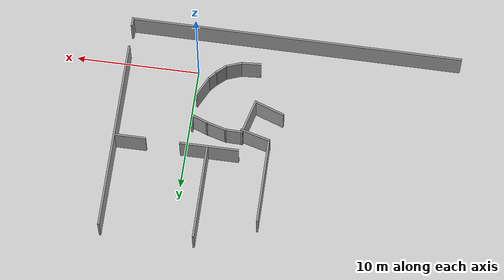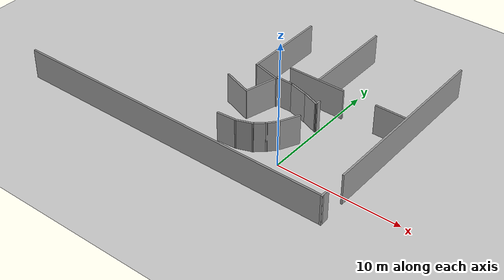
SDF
<sdf version="1.7">
 <world name="default">
  <model name="ground_plane">
   <static>1</static>
   <link name="link">
    <collision name="collision">
     <geometry><plane><normal>0 0 1</normal><size>100 100</size></plane></geometry>
     <surface>
      <contact><collide_bitmask>65535</collide_bitmask></contact>
      <friction><ode><mu>100</mu><mu2>50</mu2></ode></friction>
     </surface>
    </collision>
    <visual name="visual">
     <cast_shadows>0</cast_shadows>
     <geometry><plane><normal>0 0 1</normal><size>100 100</size></plane></geometry>
     <material>
      <script><uri>file://media/materials/scripts/gazebo.material</uri><name>Gazebo/Grey</name></script>
     </material>
    </visual>
   </link>
  </model>
  <model name="museum">
   <link name="Wall_1">
    <pose>12.1586 -6.274 0 0 -0 0.071226</pose>
    <visual name="Wall_1_Visual">
     <pose>0 0 1.25 0 -0 0</pose>
     <geometry><box><size>1.65613 0.15 2.5</size></box></geometry>
     <material>
      <script><uri>file://media/materials/scripts/gazebo.material</uri><name>Gazebo/Grey</name></script>
      <ambient>1 1 1 1</ambient>
      <shader type="pixel"/>
     </material>
     <meta><layer>0</layer></meta>
    </visual>
    <collision name="Wall_1_Collision">
     <pose>0 0 1.25 0 -0 0</pose>
     <geometry><box><size>1.65613 0.15 2.5</size></box></geometry>
     <surface>
      <friction>
       <ode><mu>1</mu><mu2>1</mu2><fdir1>0 0 0</fdir1><slip1>0</slip1><slip2>0</slip2></ode>
       <torsional>
        <coefficient>1</coefficient>
        <patch_radius>0</patch_radius>
        <surface_radius>0</surface_radius>
        <use_patch_radius>1</use_patch_radius>
        <ode><slip>0</slip></ode>
       </torsional>
      </friction>
      <bounce><restitution_coefficient>0</restitution_coefficient><threshold>1e+06</threshold></bounce>
      <contact>
       <collide_without_contact>0</collide_without_contact>
       <collide_without_contact_bitmask>1</collide_without_contact_bitmask>
       <collide_bitmask>1</collide_bitmask>
       <ode>
        <soft_cfm>0</soft_cfm>
        <soft_erp>0.2</soft_erp>
        <kp>1e+13</kp>
        <kd>1</kd>
        <max_vel>0.01</max_vel>
        <min_depth>0</min_depth>
       </ode>
       <bullet>
        <split_impulse>1</split_impulse>
        <split_impulse_penetration_threshold>-0.01</split_impulse_penetration_threshold>
        <soft_cfm>0</soft_cfm>
        <soft_erp>0.2</soft_erp>
        <kp>1e+13</kp>
        <kd>1</kd>
       </bullet>
      </contact>
     </surface>
    </collision>
   </link>
   <link name="Wall_14">
    <pose>10.1587 -2.61733 0 0 0 -0.33835</pose>
    <visual name="Wall_14_Visual">
     <pose>0 0 1.25 0 -0 0</pose>
     <geometry><box><size>2.58802 0.15 2.5</size></box></geometry>
     <material>
      <script><uri>file://media/materials/scripts/gazebo.material</uri><name>Gazebo/Grey</name></script>
      <ambient>1 1 1 1</ambient>
      <shader type="pixel"/>
     </material>
     <meta><layer>0</layer></meta>
    </visual>
    <collision name="Wall_14_Collision">
     <pose>0 0 1.25 0 -0 0</pose>
     <geometry><box><size>2.58802 0.15 2.5</size></box></geometry>
     <surface>
      <friction>
       <ode><mu>1</mu><mu2>1</mu2><fdir1>0 0 0</fdir1><slip1>0</slip1><slip2>0</slip2></ode>
       <torsional>
        <coefficient>1</coefficient>
        <patch_radius>0</patch_radius>
        <surface_radius>0</surface_radius>
        <use_patch_radius>1</use_patch_radius>
        <ode><slip>0</slip></ode>
       </torsional>
      </friction>
      <bounce><restitution_coefficient>0</restitution_coefficient><threshold>1e+06</threshold></bounce>
      <contact>
       <collide_without_contact>0</collide_without_contact>
       <collide_without_contact_bitmask>1</collide_without_contact_bitmask>
       <collide_bitmask>1</collide_bitmask>
       <ode>
        <soft_cfm>0</soft_cfm>
        <soft_erp>0.2</soft_erp>
        <kp>1e+13</kp>
        <kd>1</kd>
        <max_vel>0.01</max_vel>
        <min_depth>0</min_depth>
       </ode>
       <bullet>
        <split_impulse>1</split_impulse>
        <split_impulse_penetration_threshold>-0.01</split_impulse_penetration_threshold>
        <soft_cfm>0</soft_cfm>
        <soft_erp>0.2</soft_erp>
        <kp>1e+13</kp>
        <kd>1</kd>
       </bullet>
      </contact>
     </surface>
    </collision>
   </link>
   <link name="Wall_15">
    <pose>11.6877 -1.62545 0 0 -0 1.309</pose>
    <visual name="Wall_15_Visual">
     <pose>0 0 1.25 0 -0 0</pose>
     <geometry><box><size>3 0.15 2.5</size></box></geometry>
     <material>
      <script><uri>file://media/materials/scripts/gazebo.material</uri><name>Gazebo/Grey</name></script>
      <ambient>1 1 1 1</ambient>
      <shader type="pixel"/>
     </material>
     <meta><layer>0</layer></meta>
    </visual>
    <collision name="Wall_15_Collision">
     <pose>0 0 1.25 0 -0 0</pose>
     <geometry><box><size>3 0.15 2.5</size></box></geometry>
     <surface>
      <friction>
       <ode><mu>1</mu><mu2>1</mu2><fdir1>0 0 0</fdir1><slip1>0</slip1><slip2>0</slip2></ode>
       <torsional>
        <coefficient>1</coefficient>
        <patch_radius>0</patch_radius>
        <surface_radius>0</surface_radius>
        <use_patch_radius>1</use_patch_radius>
        <ode><slip>0</slip></ode>
       </torsional>
      </friction>
      <bounce><restitution_coefficient>0</restitution_coefficient><threshold>1e+06</threshold></bounce>
      <contact>
       <collide_without_contact>0</collide_without_contact>
       <collide_without_contact_bitmask>1</collide_without_contact_bitmask>
       <collide_bitmask>1</collide_bitmask>
       <ode>
        <soft_cfm>0</soft_cfm>
        <soft_erp>0.2</soft_erp>
        <kp>1e+13</kp>
        <kd>1</kd>
        <max_vel>0.01</max_vel>
        <min_depth>0</min_depth>
       </ode>
       <bullet>
        <split_impulse>1</split_impulse>
        <split_impulse_penetration_threshold>-0.01</split_impulse_penetration_threshold>
        <soft_cfm>0</soft_cfm>
        <soft_erp>0.2</soft_erp>
        <kp>1e+13</kp>
        <kd>1</kd>
       </bullet>
      </contact>
     </surface>
    </collision>
   </link>
   <link name="Wall_16">
    <pose>12.7085 -0.282917 0 0 0 -0.020832</pose>
    <visual name="Wall_16_Visual">
     <pose>0 0 1.25 0 -0 0</pose>
     <geometry><box><size>1.4744 0.15 2.5</size></box></geometry>
     <material>
      <script><uri>file://media/materials/scripts/gazebo.material</uri><name>Gazebo/Grey</name></script>
      <ambient>1 1 1 1</ambient>
      <shader type="pixel"/>
     </material>
     <meta><layer>0</layer></meta>
    </visual>
    <collision name="Wall_16_Collision">
     <pose>0 0 1.25 0 -0 0</pose>
     <geometry><box><size>1.4744 0.15 2.5</size></box></geometry>
     <surface>
      <friction>
       <ode><mu>1</mu><mu2>1</mu2><fdir1>0 0 0</fdir1><slip1>0</slip1><slip2>0</slip2></ode>
       <torsional>
        <coefficient>1</coefficient>
        <patch_radius>0</patch_radius>
        <surface_radius>0</surface_radius>
        <use_patch_radius>1</use_patch_radius>
        <ode><slip>0</slip></ode>
       </torsional>
      </friction>
      <bounce><restitution_coefficient>0</restitution_coefficient><threshold>1e+06</threshold></bounce>
      <contact>
       <collide_without_contact>0</collide_without_contact>
       <collide_without_contact_bitmask>1</collide_without_contact_bitmask>
       <collide_bitmask>1</collide_bitmask>
       <ode>
        <soft_cfm>0</soft_cfm>
        <soft_erp>0.2</soft_erp>
        <kp>1e+13</kp>
        <kd>1</kd>
        <max_vel>0.01</max_vel>
        <min_depth>0</min_depth>
       </ode>
       <bullet>
        <split_impulse>1</split_impulse>
        <split_impulse_penetration_threshold>-0.01</split_impulse_penetration_threshold>
        <soft_cfm>0</soft_cfm>
        <soft_erp>0.2</soft_erp>
        <kp>1e+13</kp>
        <kd>1</kd>
       </bullet>
      </contact>
     </surface>
    </collision>
   </link>
   <link name="Wall_17">
    <pose>14.1433 -0.503766 0 0 0 -0.261799</pose>
    <visual name="Wall_17_Visual">
     <pose>0 0 1.25 0 -0 0</pose>
     <geometry><box><size>1.75 0.15 2.5</size></box></geometry>
     <material>
      <script><uri>file://media/materials/scripts/gazebo.material</uri><name>Gazebo/Grey</name></script>
      <ambient>1 1 1 1</ambient>
      <shader type="pixel"/>
     </material>
     <meta><layer>0</layer></meta>
    </visual>
    <collision name="Wall_17_Collision">
     <pose>0 0 1.25 0 -0 0</pose>
     <geometry><box><size>1.75 0.15 2.5</size></box></geometry>
     <surface>
      <friction>
       <ode><mu>1</mu><mu2>1</mu2><fdir1>0 0 0</fdir1><slip1>0</slip1><slip2>0</slip2></ode>
       <torsional>
        <coefficient>1</coefficient>
        <patch_radius>0</patch_radius>
        <surface_radius>0</surface_radius>
        <use_patch_radius>1</use_patch_radius>
        <ode><slip>0</slip></ode>
       </torsional>
      </friction>
      <bounce><restitution_coefficient>0</restitution_coefficient><threshold>1e+06</threshold></bounce>
      <contact>
       <collide_without_contact>0</collide_without_contact>
       <collide_without_contact_bitmask>1</collide_without_contact_bitmask>
       <collide_bitmask>1</collide_bitmask>
       <ode>
        <soft_cfm>0</soft_cfm>
        <soft_erp>0.2</soft_erp>
        <kp>1e+13</kp>
        <kd>1</kd>
        <max_vel>0.01</max_vel>
        <min_depth>0</min_depth>
       </ode>
       <bullet>
        <split_impulse>1</split_impulse>
        <split_impulse_penetration_threshold>-0.01</split_impulse_penetration_threshold>
        <soft_cfm>0</soft_cfm>
        <soft_erp>0.2</soft_erp>
        <kp>1e+13</kp>
        <kd>1</kd>
       </bullet>
      </contact>
     </surface>
    </collision>
   </link>
   <link name="Wall_18">
    <pose>15.5429 -0.945865 0 0 0 -0.358731</pose>
    <visual name="Wall_18_Visual">
     <pose>0 0 1.25 0 -0 0</pose>
     <geometry><box><size>1.48895 0.15 2.5</size></box></geometry>
     <material>
      <script><uri>file://media/materials/scripts/gazebo.material</uri><name>Gazebo/Grey</name></script>
      <ambient>1 1 1 1</ambient>
      <shader type="pixel"/>
     </material>
     <meta><layer>0</layer></meta>
    </visual>
    <collision name="Wall_18_Collision">
     <pose>0 0 1.25 0 -0 0</pose>
     <geometry><box><size>1.48895 0.15 2.5</size></box></geometry>
     <surface>
      <friction>
       <ode><mu>1</mu><mu2>1</mu2><fdir1>0 0 0</fdir1><slip1>0</slip1><slip2>0</slip2></ode>
       <torsional>
        <coefficient>1</coefficient>
        <patch_radius>0</patch_radius>
        <surface_radius>0</surface_radius>
        <use_patch_radius>1</use_patch_radius>
        <ode><slip>0</slip></ode>
       </torsional>
      </friction>
      <bounce><restitution_coefficient>0</restitution_coefficient><threshold>1e+06</threshold></bounce>
      <contact>
       <collide_without_contact>0</collide_without_contact>
       <collide_without_contact_bitmask>1</collide_without_contact_bitmask>
       <collide_bitmask>1</collide_bitmask>
       <ode>
        <soft_cfm>0</soft_cfm>
        <soft_erp>0.2</soft_erp>
        <kp>1e+13</kp>
        <kd>1</kd>
        <max_vel>0.01</max_vel>
        <min_depth>0</min_depth>
       </ode>
       <bullet>
        <split_impulse>1</split_impulse>
        <split_impulse_penetration_threshold>-0.01</split_impulse_penetration_threshold>
        <soft_cfm>0</soft_cfm>
        <soft_erp>0.2</soft_erp>
        <kp>1e+13</kp>
        <kd>1</kd>
       </bullet>
      </contact>
     </surface>
    </collision>
   </link>
   <link name="Wall_19">
    <pose>16.1697 -1.00591 0 0 -0 1.5708</pose>
    <visual name="Wall_19_Visual">
     <pose>0 0 1.25 0 -0 0</pose>
     <geometry><box><size>0.5 0.15 2.5</size></box></geometry>
     <material>
      <script><uri>file://media/materials/scripts/gazebo.material</uri><name>Gazebo/Grey</name></script>
      <ambient>1 1 1 1</ambient>
      <shader type="pixel"/>
     </material>
     <meta><layer>0</layer></meta>
    </visual>
    <collision name="Wall_19_Collision">
     <pose>0 0 1.25 0 -0 0</pose>
     <geometry><box><size>0.5 0.15 2.5</size></box></geometry>
     <surface>
      <friction>
       <ode><mu>1</mu><mu2>1</mu2><fdir1>0 0 0</fdir1><slip1>0</slip1><slip2>0</slip2></ode>
       <torsional>
        <coefficient>1</coefficient>
        <patch_radius>0</patch_radius>
        <surface_radius>0</surface_radius>
        <use_patch_radius>1</use_patch_radius>
        <ode><slip>0</slip></ode>
       </torsional>
      </friction>
      <bounce><restitution_coefficient>0</restitution_coefficient><threshold>1e+06</threshold></bounce>
      <contact>
       <collide_without_contact>0</collide_without_contact>
       <collide_without_contact_bitmask>1</collide_without_contact_bitmask>
       <collide_bitmask>1</collide_bitmask>
       <ode>
        <soft_cfm>0</soft_cfm>
        <soft_erp>0.2</soft_erp>
        <kp>1e+13</kp>
        <kd>1</kd>
        <max_vel>0.01</max_vel>
        <min_depth>0</min_depth>
       </ode>
       <bullet>
        <split_impulse>1</split_impulse>
        <split_impulse_penetration_threshold>-0.01</split_impulse_penetration_threshold>
        <soft_cfm>0</soft_cfm>
        <soft_erp>0.2</soft_erp>
        <kp>1e+13</kp>
        <kd>1</kd>
       </bullet>
      </contact>
     </surface>
    </collision>
   </link>
   <link name="Wall_2">
    <pose>13.4937 -6.00412 0 0 -0 0.354727</pose>
    <visual name="Wall_2_Visual">
     <pose>0 0 1.25 0 -0 0</pose>
     <geometry><box><size>1.39543 0.15 2.5</size></box></geometry>
     <material>
      <script><uri>file://media/materials/scripts/gazebo.material</uri><name>Gazebo/Grey</name></script>
      <ambient>1 1 1 1</ambient>
      <shader type="pixel"/>
     </material>
     <meta><layer>0</layer></meta>
    </visual>
    <collision name="Wall_2_Collision">
     <pose>0 0 1.25 0 -0 0</pose>
     <geometry><box><size>1.39543 0.15 2.5</size></box></geometry>
     <surface>
      <friction>
       <ode><mu>1</mu><mu2>1</mu2><fdir1>0 0 0</fdir1><slip1>0</slip1><slip2>0</slip2></ode>
       <torsional>
        <coefficient>1</coefficient>
        <patch_radius>0</patch_radius>
        <surface_radius>0</surface_radius>
        <use_patch_radius>1</use_patch_radius>
        <ode><slip>0</slip></ode>
       </torsional>
      </friction>
      <bounce><restitution_coefficient>0</restitution_coefficient><threshold>1e+06</threshold></bounce>
      <contact>
       <collide_without_contact>0</collide_without_contact>
       <collide_without_contact_bitmask>1</collide_without_contact_bitmask>
       <collide_bitmask>1</collide_bitmask>
       <ode>
        <soft_cfm>0</soft_cfm>
        <soft_erp>0.2</soft_erp>
        <kp>1e+13</kp>
        <kd>1</kd>
        <max_vel>0.01</max_vel>
        <min_depth>0</min_depth>
       </ode>
       <bullet>
        <split_impulse>1</split_impulse>
        <split_impulse_penetration_threshold>-0.01</split_impulse_penetration_threshold>
        <soft_cfm>0</soft_cfm>
        <soft_erp>0.2</soft_erp>
        <kp>1e+13</kp>
        <kd>1</kd>
       </bullet>
      </contact>
     </surface>
    </collision>
   </link>
   <link name="Wall_21">
    <pose>14.4565 1.31728 0 0 -0 0</pose>
    <visual name="Wall_21_Visual">
     <pose>0 0 1.25 0 -0 0</pose>
     <geometry><box><size>4.75 0.15 2.5</size></box></geometry>
     <material>
      <script><uri>file://media/materials/scripts/gazebo.material</uri><name>Gazebo/Grey</name></script>
      <ambient>1 1 1 1</ambient>
      <shader type="pixel"/>
     </material>
     <meta><layer>0</layer></meta>
    </visual>
    <collision name="Wall_21_Collision">
     <pose>0 0 1.25 0 -0 0</pose>
     <geometry><box><size>4.75 0.15 2.5</size></box></geometry>
     <surface>
      <friction>
       <ode><mu>1</mu><mu2>1</mu2><fdir1>0 0 0</fdir1><slip1>0</slip1><slip2>0</slip2></ode>
       <torsional>
        <coefficient>1</coefficient>
        <patch_radius>0</patch_radius>
        <surface_radius>0</surface_radius>
        <use_patch_radius>1</use_patch_radius>
        <ode><slip>0</slip></ode>
       </torsional>
      </friction>
      <bounce><restitution_coefficient>0</restitution_coefficient><threshold>1e+06</threshold></bounce>
      <contact>
       <collide_without_contact>0</collide_without_contact>
       <collide_without_contact_bitmask>1</collide_without_contact_bitmask>
       <collide_bitmask>1</collide_bitmask>
       <ode>
        <soft_cfm>0</soft_cfm>
        <soft_erp>0.2</soft_erp>
        <kp>1e+13</kp>
        <kd>1</kd>
        <max_vel>0.01</max_vel>
        <min_depth>0</min_depth>
       </ode>
       <bullet>
        <split_impulse>1</split_impulse>
        <split_impulse_penetration_threshold>-0.01</split_impulse_penetration_threshold>
        <soft_cfm>0</soft_cfm>
        <soft_erp>0.2</soft_erp>
        <kp>1e+13</kp>
        <kd>1</kd>
       </bullet>
      </contact>
     </surface>
    </collision>
   </link>
   <link name="Wall_23">
    <pose>20.8037 1.29717 0 0 -0 0</pose>
    <visual name="Wall_23_Visual">
     <pose>0 0 1.25 0 -0 0</pose>
     <geometry><box><size>2.5 0.15 2.5</size></box></geometry>
     <material>
      <script><uri>file://media/materials/scripts/gazebo.material</uri><name>Gazebo/Grey</name></script>
      <ambient>1 1 1 1</ambient>
      <shader type="pixel"/>
     </material>
     <meta><layer>0</layer></meta>
    </visual>
    <collision name="Wall_23_Collision">
     <pose>0 0 1.25 0 -0 0</pose>
     <geometry><box><size>2.5 0.15 2.5</size></box></geometry>
     <surface>
      <friction>
       <ode><mu>1</mu><mu2>1</mu2><fdir1>0 0 0</fdir1><slip1>0</slip1><slip2>0</slip2></ode>
       <torsional>
        <coefficient>1</coefficient>
        <patch_radius>0</patch_radius>
        <surface_radius>0</surface_radius>
        <use_patch_radius>1</use_patch_radius>
        <ode><slip>0</slip></ode>
       </torsional>
      </friction>
      <bounce><restitution_coefficient>0</restitution_coefficient><threshold>1e+06</threshold></bounce>
      <contact>
       <collide_without_contact>0</collide_without_contact>
       <collide_without_contact_bitmask>1</collide_without_contact_bitmask>
       <collide_bitmask>1</collide_bitmask>
       <ode>
        <soft_cfm>0</soft_cfm>
        <soft_erp>0.2</soft_erp>
        <kp>1e+13</kp>
        <kd>1</kd>
        <max_vel>0.01</max_vel>
        <min_depth>0</min_depth>
       </ode>
       <bullet>
        <split_impulse>1</split_impulse>
        <split_impulse_penetration_threshold>-0.01</split_impulse_penetration_threshold>
        <soft_cfm>0</soft_cfm>
        <soft_erp>0.2</soft_erp>
        <kp>1e+13</kp>
        <kd>1</kd>
       </bullet>
      </contact>
     </surface>
    </collision>
   </link>
   <link name="Wall_25">
    <pose>9.82211 3.56475 0 0 0 -1.5708</pose>
    <visual name="Wall_25_Visual">
     <pose>0 0 1.25 0 -0 0</pose>
     <geometry><box><size>7 0.15 2.5</size></box></geometry>
     <material>
      <script><uri>file://media/materials/scripts/gazebo.material</uri><name>Gazebo/Grey</name></script>
      <ambient>1 1 1 1</ambient>
      <shader type="pixel"/>
     </material>
     <meta><layer>0</layer></meta>
    </visual>
    <collision name="Wall_25_Collision">
     <pose>0 0 1.25 0 -0 0</pose>
     <geometry><box><size>7 0.15 2.5</size></box></geometry>
     <surface>
      <friction>
       <ode><mu>1</mu><mu2>1</mu2><fdir1>0 0 0</fdir1><slip1>0</slip1><slip2>0</slip2></ode>
       <torsional>
        <coefficient>1</coefficient>
        <patch_radius>0</patch_radius>
        <surface_radius>0</surface_radius>
        <use_patch_radius>1</use_patch_radius>
        <ode><slip>0</slip></ode>
       </torsional>
      </friction>
      <bounce><restitution_coefficient>0</restitution_coefficient><threshold>1e+06</threshold></bounce>
      <contact>
       <collide_without_contact>0</collide_without_contact>
       <collide_without_contact_bitmask>1</collide_without_contact_bitmask>
       <collide_bitmask>1</collide_bitmask>
       <ode>
        <soft_cfm>0</soft_cfm>
        <soft_erp>0.2</soft_erp>
        <kp>1e+13</kp>
        <kd>1</kd>
        <max_vel>0.01</max_vel>
        <min_depth>0</min_depth>
       </ode>
       <bullet>
        <split_impulse>1</split_impulse>
        <split_impulse_penetration_threshold>-0.01</split_impulse_penetration_threshold>
        <soft_cfm>0</soft_cfm>
        <soft_erp>0.2</soft_erp>
        <kp>1e+13</kp>
        <kd>1</kd>
       </bullet>
      </contact>
     </surface>
    </collision>
   </link>
   <link name="Wall_26">
    <pose>10.9571 -0.164361 0 0 0 -0.261799</pose>
    <visual name="Wall_26_Visual">
     <pose>0 0 1.25 0 -0 0</pose>
     <geometry><box><size>2.5 0.15 2.5</size></box></geometry>
     <material>
      <script><uri>file://media/materials/scripts/gazebo.material</uri><name>Gazebo/Grey</name></script>
      <ambient>1 1 1 1</ambient>
      <shader type="pixel"/>
     </material>
     <meta><layer>0</layer></meta>
    </visual>
    <collision name="Wall_26_Collision">
     <pose>0 0 1.25 0 -0 0</pose>
     <geometry><box><size>2.5 0.15 2.5</size></box></geometry>
     <surface>
      <friction>
       <ode><mu>1</mu><mu2>1</mu2><fdir1>0 0 0</fdir1><slip1>0</slip1><slip2>0</slip2></ode>
       <torsional>
        <coefficient>1</coefficient>
        <patch_radius>0</patch_radius>
        <surface_radius>0</surface_radius>
        <use_patch_radius>1</use_patch_radius>
        <ode><slip>0</slip></ode>
       </torsional>
      </friction>
      <bounce><restitution_coefficient>0</restitution_coefficient><threshold>1e+06</threshold></bounce>
      <contact>
       <collide_without_contact>0</collide_without_contact>
       <collide_without_contact_bitmask>1</collide_without_contact_bitmask>
       <collide_bitmask>1</collide_bitmask>
       <ode>
        <soft_cfm>0</soft_cfm>
        <soft_erp>0.2</soft_erp>
        <kp>1e+13</kp>
        <kd>1</kd>
        <max_vel>0.01</max_vel>
        <min_depth>0</min_depth>
       </ode>
       <bullet>
        <split_impulse>1</split_impulse>
        <split_impulse_penetration_threshold>-0.01</split_impulse_penetration_threshold>
        <soft_cfm>0</soft_cfm>
        <soft_erp>0.2</soft_erp>
        <kp>1e+13</kp>
        <kd>1</kd>
       </bullet>
      </contact>
     </surface>
    </collision>
   </link>
   <link name="Wall_3">
    <pose>14.44 -5.47676 0 0 -0 0.719878</pose>
    <visual name="Wall_3_Visual">
     <pose>0 0 1.25 0 -0 0</pose>
     <geometry><box><size>1.09363 0.15 2.5</size></box></geometry>
     <material>
      <script><uri>file://media/materials/scripts/gazebo.material</uri><name>Gazebo/Grey</name></script>
      <ambient>1 1 1 1</ambient>
      <shader type="pixel"/>
     </material>
     <meta><layer>0</layer></meta>
    </visual>
    <collision name="Wall_3_Collision">
     <pose>0 0 1.25 0 -0 0</pose>
     <geometry><box><size>1.09363 0.15 2.5</size></box></geometry>
     <surface>
      <friction>
       <ode><mu>1</mu><mu2>1</mu2><fdir1>0 0 0</fdir1><slip1>0</slip1><slip2>0</slip2></ode>
       <torsional>
        <coefficient>1</coefficient>
        <patch_radius>0</patch_radius>
        <surface_radius>0</surface_radius>
        <use_patch_radius>1</use_patch_radius>
        <ode><slip>0</slip></ode>
       </torsional>
      </friction>
      <bounce><restitution_coefficient>0</restitution_coefficient><threshold>1e+06</threshold></bounce>
      <contact>
       <collide_without_contact>0</collide_without_contact>
       <collide_without_contact_bitmask>1</collide_without_contact_bitmask>
       <collide_bitmask>1</collide_bitmask>
       <ode>
        <soft_cfm>0</soft_cfm>
        <soft_erp>0.2</soft_erp>
        <kp>1e+13</kp>
        <kd>1</kd>
        <max_vel>0.01</max_vel>
        <min_depth>0</min_depth>
       </ode>
       <bullet>
        <split_impulse>1</split_impulse>
        <split_impulse_penetration_threshold>-0.01</split_impulse_penetration_threshold>
        <soft_cfm>0</soft_cfm>
        <soft_erp>0.2</soft_erp>
        <kp>1e+13</kp>
        <kd>1</kd>
       </bullet>
      </contact>
     </surface>
    </collision>
   </link>
   <link name="Wall_31">
    <pose>22.115 1.24705 0 0 0 -1.5708</pose>
    <visual name="Wall_31_Visual">
     <pose>0 0 1.25 0 -0 0</pose>
     <geometry><box><size>15.5 0.15 2.5</size></box></geometry>
     <material>
      <script><uri>file://media/materials/scripts/gazebo.material</uri><name>Gazebo/Grey</name></script>
      <ambient>1 1 1 1</ambient>
      <shader type="pixel"/>
     </material>
     <meta><layer>0</layer></meta>
    </visual>
    <collision name="Wall_31_Collision">
     <pose>0 0 1.25 0 -0 0</pose>
     <geometry><box><size>15.5 0.15 2.5</size></box></geometry>
     <surface>
      <friction>
       <ode><mu>1</mu><mu2>1</mu2><fdir1>0 0 0</fdir1><slip1>0</slip1><slip2>0</slip2></ode>
       <torsional>
        <coefficient>1</coefficient>
        <patch_radius>0</patch_radius>
        <surface_radius>0</surface_radius>
        <use_patch_radius>1</use_patch_radius>
        <ode><slip>0</slip></ode>
       </torsional>
      </friction>
      <bounce><restitution_coefficient>0</restitution_coefficient><threshold>1e+06</threshold></bounce>
      <contact>
       <collide_without_contact>0</collide_without_contact>
       <collide_without_contact_bitmask>1</collide_without_contact_bitmask>
       <collide_bitmask>1</collide_bitmask>
       <ode>
        <soft_cfm>0</soft_cfm>
        <soft_erp>0.2</soft_erp>
        <kp>1e+13</kp>
        <kd>1</kd>
        <max_vel>0.01</max_vel>
        <min_depth>0</min_depth>
       </ode>
       <bullet>
        <split_impulse>1</split_impulse>
        <split_impulse_penetration_threshold>-0.01</split_impulse_penetration_threshold>
        <soft_cfm>0</soft_cfm>
        <soft_erp>0.2</soft_erp>
        <kp>1e+13</kp>
        <kd>1</kd>
       </bullet>
      </contact>
     </surface>
    </collision>
   </link>
   <link name="Wall_34">
    <pose>8.80284 -8.94912 0 0 0 -0.001503</pose>
    <visual name="Wall_34_Visual">
     <pose>0 0 1.25 0 -0 0</pose>
     <geometry><box><size>26.9283 0.15 2.5</size></box></geometry>
     <material>
      <script><uri>file://media/materials/scripts/gazebo.material</uri><name>Gazebo/Grey</name></script>
      <ambient>1 1 1 1</ambient>
      <shader type="pixel"/>
     </material>
     <meta><layer>0</layer></meta>
    </visual>
    <collision name="Wall_34_Collision">
     <pose>0 0 1.25 0 -0 0</pose>
     <geometry><box><size>26.9283 0.15 2.5</size></box></geometry>
     <surface>
      <friction>
       <ode><mu>1</mu><mu2>1</mu2><fdir1>0 0 0</fdir1><slip1>0</slip1><slip2>0</slip2></ode>
       <torsional>
        <coefficient>1</coefficient>
        <patch_radius>0</patch_radius>
        <surface_radius>0</surface_radius>
        <use_patch_radius>1</use_patch_radius>
        <ode><slip>0</slip></ode>
       </torsional>
      </friction>
      <bounce><restitution_coefficient>0</restitution_coefficient><threshold>1e+06</threshold></bounce>
      <contact>
       <collide_without_contact>0</collide_without_contact>
       <collide_without_contact_bitmask>1</collide_without_contact_bitmask>
       <collide_bitmask>1</collide_bitmask>
       <ode>
        <soft_cfm>0</soft_cfm>
        <soft_erp>0.2</soft_erp>
        <kp>1e+13</kp>
        <kd>1</kd>
        <max_vel>0.01</max_vel>
        <min_depth>0</min_depth>
       </ode>
       <bullet>
        <split_impulse>1</split_impulse>
        <split_impulse_penetration_threshold>-0.01</split_impulse_penetration_threshold>
        <soft_cfm>0</soft_cfm>
        <soft_erp>0.2</soft_erp>
        <kp>1e+13</kp>
        <kd>1</kd>
       </bullet>
      </contact>
     </surface>
    </collision>
   </link>
   <link name="Wall_35">
    <pose>22.1862 -8.675 0 0 -0 1.5708</pose>
    <visual name="Wall_35_Visual">
     <pose>0 0 1.25 0 -0 0</pose>
     <geometry><box><size>0.75 0.15 2.5</size></box></geometry>
     <material>
      <script><uri>file://media/materials/scripts/gazebo.material</uri><name>Gazebo/Grey</name></script>
      <ambient>1 1 1 1</ambient>
      <shader type="pixel"/>
     </material>
     <meta><layer>0</layer></meta>
    </visual>
    <collision name="Wall_35_Collision">
     <pose>0 0 1.25 0 -0 0</pose>
     <geometry><box><size>0.75 0.15 2.5</size></box></geometry>
     <surface>
      <friction>
       <ode><mu>1</mu><mu2>1</mu2><fdir1>0 0 0</fdir1><slip1>0</slip1><slip2>0</slip2></ode>
       <torsional>
        <coefficient>1</coefficient>
        <patch_radius>0</patch_radius>
        <surface_radius>0</surface_radius>
        <use_patch_radius>1</use_patch_radius>
        <ode><slip>0</slip></ode>
       </torsional>
      </friction>
      <bounce><restitution_coefficient>0</restitution_coefficient><threshold>1e+06</threshold></bounce>
      <contact>
       <collide_without_contact>0</collide_without_contact>
       <collide_without_contact_bitmask>1</collide_without_contact_bitmask>
       <collide_bitmask>1</collide_bitmask>
       <ode>
        <soft_cfm>0</soft_cfm>
        <soft_erp>0.2</soft_erp>
        <kp>1e+13</kp>
        <kd>1</kd>
        <max_vel>0.01</max_vel>
        <min_depth>0</min_depth>
       </ode>
       <bullet>
        <split_impulse>1</split_impulse>
        <split_impulse_penetration_threshold>-0.01</split_impulse_penetration_threshold>
        <soft_cfm>0</soft_cfm>
        <soft_erp>0.2</soft_erp>
        <kp>1e+13</kp>
        <kd>1</kd>
       </bullet>
      </contact>
     </surface>
    </collision>
   </link>
   <link name="Wall_4">
    <pose>15.0829 -4.83922 0 0 -0 0.860902</pose>
    <visual name="Wall_4_Visual">
     <pose>0 0 1.25 0 -0 0</pose>
     <geometry><box><size>1.01092 0.15 2.5</size></box></geometry>
     <material>
      <script><uri>file://media/materials/scripts/gazebo.material</uri><name>Gazebo/Grey</name></script>
      <ambient>1 1 1 1</ambient>
      <shader type="pixel"/>
     </material>
     <meta><layer>0</layer></meta>
    </visual>
    <collision name="Wall_4_Collision">
     <pose>0 0 1.25 0 -0 0</pose>
     <geometry><box><size>1.01092 0.15 2.5</size></box></geometry>
     <surface>
      <friction>
       <ode><mu>1</mu><mu2>1</mu2><fdir1>0 0 0</fdir1><slip1>0</slip1><slip2>0</slip2></ode>
       <torsional>
        <coefficient>1</coefficient>
        <patch_radius>0</patch_radius>
        <surface_radius>0</surface_radius>
        <use_patch_radius>1</use_patch_radius>
        <ode><slip>0</slip></ode>
       </torsional>
      </friction>
      <bounce><restitution_coefficient>0</restitution_coefficient><threshold>1e+06</threshold></bounce>
      <contact>
       <collide_without_contact>0</collide_without_contact>
       <collide_without_contact_bitmask>1</collide_without_contact_bitmask>
       <collide_bitmask>1</collide_bitmask>
       <ode>
        <soft_cfm>0</soft_cfm>
        <soft_erp>0.2</soft_erp>
        <kp>1e+13</kp>
        <kd>1</kd>
        <max_vel>0.01</max_vel>
        <min_depth>0</min_depth>
       </ode>
       <bullet>
        <split_impulse>1</split_impulse>
        <split_impulse_penetration_threshold>-0.01</split_impulse_penetration_threshold>
        <soft_cfm>0</soft_cfm>
        <soft_erp>0.2</soft_erp>
        <kp>1e+13</kp>
        <kd>1</kd>
       </bullet>
      </contact>
     </surface>
    </collision>
   </link>
   <link name="Wall_5">
    <pose>15.7151 -3.78159 0 0 -0 1.11408</pose>
    <visual name="Wall_5_Visual">
     <pose>0 0 1.25 0 -0 0</pose>
     <geometry><box><size>1.77931 0.15 2.5</size></box></geometry>
     <material>
      <script><uri>file://media/materials/scripts/gazebo.material</uri><name>Gazebo/Grey</name></script>
      <ambient>1 1 1 1</ambient>
      <shader type="pixel"/>
     </material>
     <meta><layer>0</layer></meta>
    </visual>
    <collision name="Wall_5_Collision">
     <pose>0 0 1.25 0 -0 0</pose>
     <geometry><box><size>1.77931 0.15 2.5</size></box></geometry>
     <surface>
      <friction>
       <ode><mu>1</mu><mu2>1</mu2><fdir1>0 0 0</fdir1><slip1>0</slip1><slip2>0</slip2></ode>
       <torsional>
        <coefficient>1</coefficient>
        <patch_radius>0</patch_radius>
        <surface_radius>0</surface_radius>
        <use_patch_radius>1</use_patch_radius>
        <ode><slip>0</slip></ode>
       </torsional>
      </friction>
      <bounce><restitution_coefficient>0</restitution_coefficient><threshold>1e+06</threshold></bounce>
      <contact>
       <collide_without_contact>0</collide_without_contact>
       <collide_without_contact_bitmask>1</collide_without_contact_bitmask>
       <collide_bitmask>1</collide_bitmask>
       <ode>
        <soft_cfm>0</soft_cfm>
        <soft_erp>0.2</soft_erp>
        <kp>1e+13</kp>
        <kd>1</kd>
        <max_vel>0.01</max_vel>
        <min_depth>0</min_depth>
       </ode>
       <bullet>
        <split_impulse>1</split_impulse>
        <split_impulse_penetration_threshold>-0.01</split_impulse_penetration_threshold>
        <soft_cfm>0</soft_cfm>
        <soft_erp>0.2</soft_erp>
        <kp>1e+13</kp>
        <kd>1</kd>
       </bullet>
      </contact>
     </surface>
    </collision>
   </link>
   <link name="Wall_62">
    <pose>14.6114 5.175 0 0 -0 1.5708</pose>
    <visual name="Wall_62_Visual">
     <pose>0 0 1.25 0 -0 0</pose>
     <geometry><box><size>7.75 0.15 2.5</size></box></geometry>
     <material>
      <script><uri>file://media/materials/scripts/gazebo.material</uri><name>Gazebo/Grey</name></script>
      <ambient>1 1 1 1</ambient>
      <shader type="pixel"/>
     </material>
     <meta><layer>0</layer></meta>
    </visual>
    <collision name="Wall_62_Collision">
     <pose>0 0 1.25 0 -0 0</pose>
     <geometry><box><size>7.75 0.15 2.5</size></box></geometry>
     <surface>
      <friction>
       <ode><mu>1</mu><mu2>1</mu2><fdir1>0 0 0</fdir1><slip1>0</slip1><slip2>0</slip2></ode>
       <torsional>
        <coefficient>1</coefficient>
        <patch_radius>0</patch_radius>
        <surface_radius>0</surface_radius>
        <use_patch_radius>1</use_patch_radius>
        <ode><slip>0</slip></ode>
       </torsional>
      </friction>
      <bounce><restitution_coefficient>0</restitution_coefficient><threshold>1e+06</threshold></bounce>
      <contact>
       <collide_without_contact>0</collide_without_contact>
       <collide_without_contact_bitmask>1</collide_without_contact_bitmask>
       <collide_bitmask>1</collide_bitmask>
       <ode>
        <soft_cfm>0</soft_cfm>
        <soft_erp>0.2</soft_erp>
        <kp>1e+13</kp>
        <kd>1</kd>
        <max_vel>0.01</max_vel>
        <min_depth>0</min_depth>
       </ode>
       <bullet>
        <split_impulse>1</split_impulse>
        <split_impulse_penetration_threshold>-0.01</split_impulse_penetration_threshold>
        <soft_cfm>0</soft_cfm>
        <soft_erp>0.2</soft_erp>
        <kp>1e+13</kp>
        <kd>1</kd>
       </bullet>
      </contact>
     </surface>
    </collision>
   </link>
   <static>1</static>
   <pose>-16.4037 5.92571 0 0 -0 0</pose>
  </model>
 </world>
</sdf>
